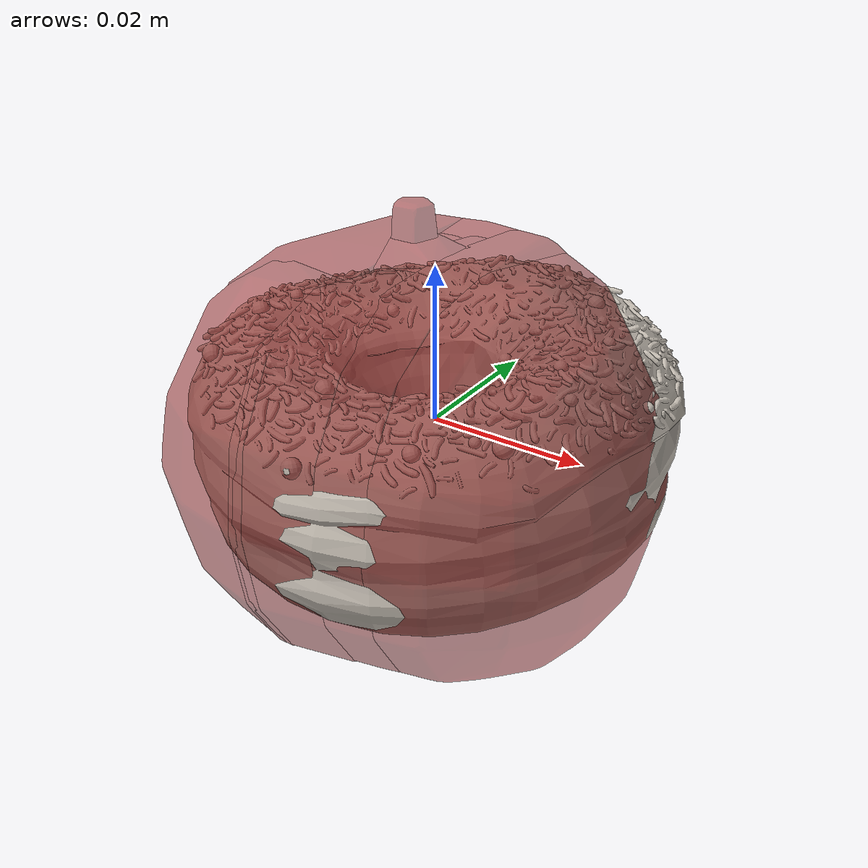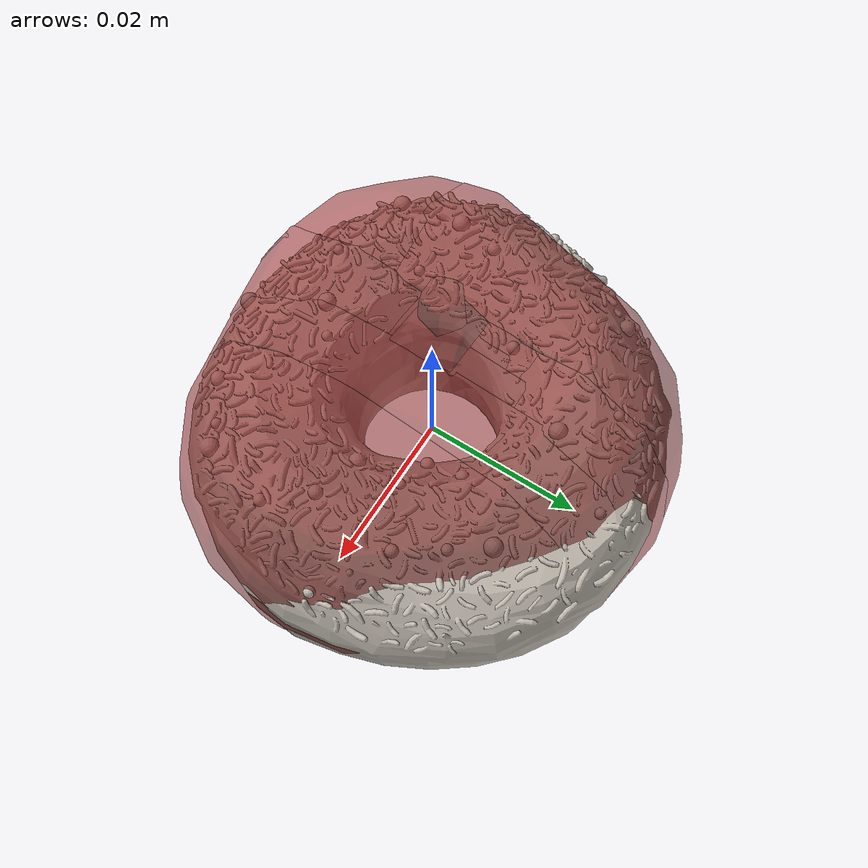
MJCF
<?xml version='1.0' encoding='utf-8'?>
<mujoco model="tomato_12">
  <asset>
    <mesh file="visual/model_normalized_0.obj" name="model_normalized_0_vis" scale="0.06 0.06 0.06" refquat="1.0 0.0 0.0 0.0" />
    <texture type="2d" name="image0" file="visual/image0.png" />
    <material name="01_-_Default.031" texture="image0" specular="0.5" shininess="0.359999993" />
    <mesh file="collision/collision_mesh_collision_0.obj" name="tomato_collision_mesh_0" scale="0.06 0.06 0.06" refquat="1.0 0.0 0.0 0.0" />
    <mesh file="collision/collision_mesh_collision_1.obj" name="tomato_collision_mesh_1" scale="0.06 0.06 0.06" refquat="1.0 0.0 0.0 0.0" />
    <mesh file="collision/collision_mesh_collision_2.obj" name="tomato_collision_mesh_2" scale="0.06 0.06 0.06" refquat="1.0 0.0 0.0 0.0" />
    <mesh file="collision/collision_mesh_collision_3.obj" name="tomato_collision_mesh_3" scale="0.06 0.06 0.06" refquat="1.0 0.0 0.0 0.0" />
    <mesh file="collision/collision_mesh_collision_4.obj" name="tomato_collision_mesh_4" scale="0.06 0.06 0.06" refquat="1.0 0.0 0.0 0.0" />
    <mesh file="collision/collision_mesh_collision_5.obj" name="tomato_collision_mesh_5" scale="0.06 0.06 0.06" refquat="1.0 0.0 0.0 0.0" />
    <mesh file="collision/collision_mesh_collision_6.obj" name="tomato_collision_mesh_6" scale="0.06 0.06 0.06" refquat="1.0 0.0 0.0 0.0" />
    <mesh file="collision/collision_mesh_collision_7.obj" name="tomato_collision_mesh_7" scale="0.06 0.06 0.06" refquat="1.0 0.0 0.0 0.0" />
    <mesh file="collision/collision_mesh_collision_8.obj" name="tomato_collision_mesh_8" scale="0.06 0.06 0.06" refquat="1.0 0.0 0.0 0.0" />
    <mesh file="collision/collision_mesh_collision_9.obj" name="tomato_collision_mesh_9" scale="0.06 0.06 0.06" refquat="1.0 0.0 0.0 0.0" />
    <mesh file="collision/collision_mesh_collision_10.obj" name="tomato_collision_mesh_10" scale="0.06 0.06 0.06" refquat="1.0 0.0 0.0 0.0" />
    <mesh file="collision/collision_mesh_collision_11.obj" name="tomato_collision_mesh_11" scale="0.06 0.06 0.06" refquat="1.0 0.0 0.0 0.0" />
    <mesh file="collision/collision_mesh_collision_12.obj" name="tomato_collision_mesh_12" scale="0.06 0.06 0.06" refquat="1.0 0.0 0.0 0.0" />
    </asset>
  <default>
    <default class="region">
      <geom group="1" conaffinity="0" contype="0" rgba="0 1 0 0" />
      </default>
    <default class="collision">
      <geom group="0" rgba="0.5 0 0 0.5" density="1000.0" />
      </default>
    </default>
  <worldbody>
    <body>
      <body name="object">
        <geom solimp="0.998 0.998 0.001" solref="0.001 1" density="100" friction="0.95 0.3 0.1" type="mesh" mesh="model_normalized_0_vis" conaffinity="0" contype="0" group="1" material="01_-_Default.031" />
        <geom class="region" name="reg_bbox" type="box" pos="0.00010024105000000066 1.3805675000000273e-05 0.0002251924999999988" size="0.03205130955000002 0.03189410380000002 0.029078109450000014" />
        <geom mesh="tomato_collision_mesh_0" type="mesh" class="collision" />
        <geom mesh="tomato_collision_mesh_1" type="mesh" class="collision" />
        <geom mesh="tomato_collision_mesh_2" type="mesh" class="collision" />
        <geom mesh="tomato_collision_mesh_3" type="mesh" class="collision" />
        <geom mesh="tomato_collision_mesh_4" type="mesh" class="collision" />
        <geom mesh="tomato_collision_mesh_5" type="mesh" class="collision" />
        <geom mesh="tomato_collision_mesh_6" type="mesh" class="collision" />
        <geom mesh="tomato_collision_mesh_7" type="mesh" class="collision" />
        <geom mesh="tomato_collision_mesh_8" type="mesh" class="collision" />
        <geom mesh="tomato_collision_mesh_9" type="mesh" class="collision" />
        <geom mesh="tomato_collision_mesh_10" type="mesh" class="collision" />
        <geom mesh="tomato_collision_mesh_11" type="mesh" class="collision" />
        <geom mesh="tomato_collision_mesh_12" type="mesh" class="collision" />
        </body>
      </body>
    </worldbody>
  </mujoco>
